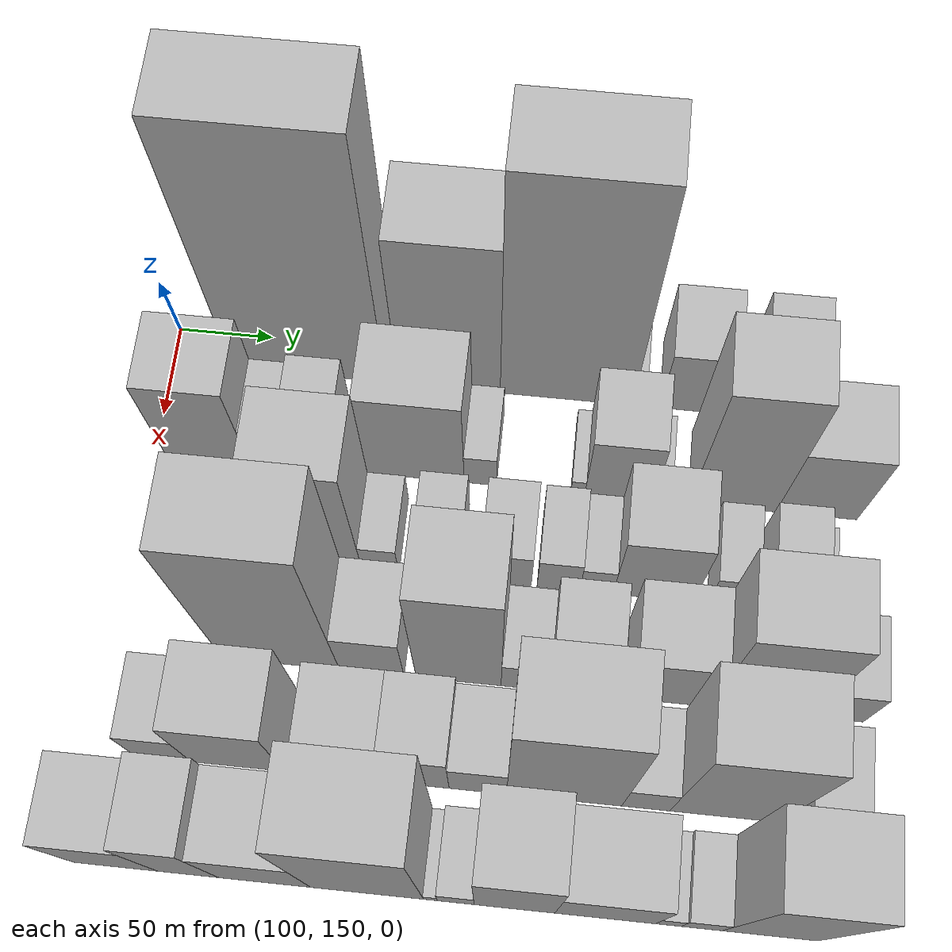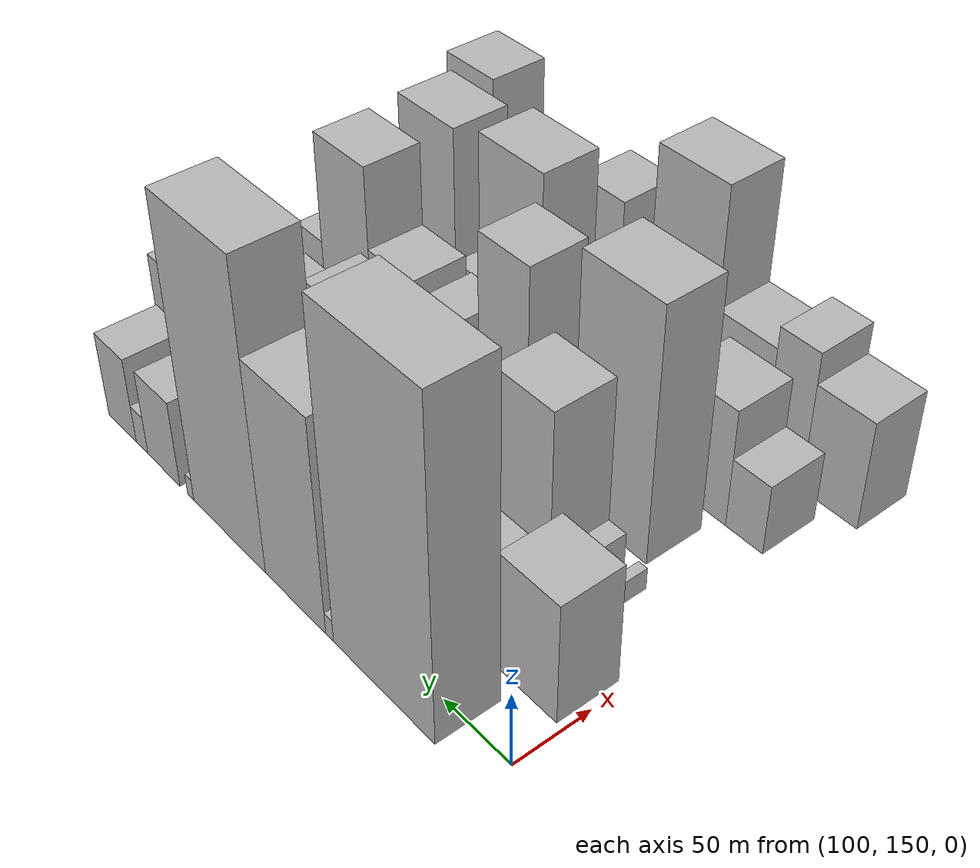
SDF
<sdf version="1.6">
 <world name="default">
  <model name="building_30">
   <static>1</static>
   <pose>100.0000 222.6896 0 0.000000 0.000000 0.000000</pose>
   <link name="link">
    <pose>0 0 109.50 0 0 0</pose>
    <collision name="collision"><geometry><box><size>40.0000 81.6465 219.0000</size></box></geometry></collision>
    <visual name="visual">
     <cast_shadows>0</cast_shadows>
     <geometry><box><size>40.0000 81.6465 219.0000</size></box></geometry>
     <material>
      <script>
       <uri>model://HANNAS_wall/materials/scripts</uri>
       <uri>model://HANNAS_wall/materials/textures</uri>
       <name>vrc/HANNAS_wall</name>
      </script>
     </material>
    </visual>
   </link>
  </model>
  <model name="building_31">
   <static>1</static>
   <pose>100.0000 266.8751 0 0.000000 0.000000 0.000000</pose>
   <link name="link">
    <pose>0 0 7.50 0 0 0</pose>
    <collision name="collision"><geometry><box><size>40.0000 6.7245 15.0000</size></box></geometry></collision>
    <visual name="visual">
     <cast_shadows>0</cast_shadows>
     <geometry><box><size>40.0000 6.7245 15.0000</size></box></geometry>
     <material>
      <script>
       <uri>model://HANNAS_wall/materials/scripts</uri>
       <uri>model://HANNAS_wall/materials/textures</uri>
       <name>vrc/HANNAS_wall</name>
      </script>
     </material>
    </visual>
   </link>
  </model>
  <model name="building_32">
   <static>1</static>
   <pose>100.0000 297.1430 0 0.000000 0.000000 0.000000</pose>
   <link name="link">
    <pose>0 0 72.00 0 0 0</pose>
    <collision name="collision"><geometry><box><size>40.0000 53.8115 144.0000</size></box></geometry></collision>
    <visual name="visual">
     <cast_shadows>0</cast_shadows>
     <geometry><box><size>40.0000 53.8115 144.0000</size></box></geometry>
     <material>
      <script>
       <uri>model://HANNAS_wall/materials/scripts</uri>
       <uri>model://HANNAS_wall/materials/textures</uri>
       <name>vrc/HANNAS_wall</name>
      </script>
     </material>
    </visual>
   </link>
  </model>
  <model name="building_33">
   <static>1</static>
   <pose>100.0000 358.9259 0 0.000000 0.000000 0.000000</pose>
   <link name="link">
    <pose>0 0 102.00 0 0 0</pose>
    <collision name="collision"><geometry><box><size>40.0000 69.7542 204.0000</size></box></geometry></collision>
    <visual name="visual">
     <cast_shadows>0</cast_shadows>
     <geometry><box><size>40.0000 69.7542 204.0000</size></box></geometry>
     <material>
      <script>
       <uri>model://HANNAS_wall/materials/scripts</uri>
       <uri>model://HANNAS_wall/materials/textures</uri>
       <name>vrc/HANNAS_wall</name>
      </script>
     </material>
    </visual>
   </link>
  </model>
  <model name="building_34">
   <static>1</static>
   <pose>100.0000 396.9656 0 0.000000 0.000000 0.000000</pose>
   <link name="link">
    <pose>0 0 7.50 0 0 0</pose>
    <collision name="collision"><geometry><box><size>40.0000 6.3254 15.0000</size></box></geometry></collision>
    <visual name="visual">
     <cast_shadows>0</cast_shadows>
     <geometry><box><size>40.0000 6.3254 15.0000</size></box></geometry>
     <material>
      <script>
       <uri>model://HANNAS_wall/materials/scripts</uri>
       <uri>model://HANNAS_wall/materials/textures</uri>
       <name>vrc/HANNAS_wall</name>
      </script>
     </material>
    </visual>
   </link>
  </model>
  <model name="building_35">
   <static>1</static>
   <pose>100.0000 425.0530 0 0.000000 0.000000 0.000000</pose>
   <link name="link">
    <pose>0 0 30.00 0 0 0</pose>
    <collision name="collision"><geometry><box><size>40.0000 33.8494 60.0000</size></box></geometry></collision>
    <visual name="visual">
     <cast_shadows>0</cast_shadows>
     <geometry><box><size>40.0000 33.8494 60.0000</size></box></geometry>
     <material>
      <script>
       <uri>model://HANNAS_wall/materials/scripts</uri>
       <uri>model://HANNAS_wall/materials/textures</uri>
       <name>vrc/HANNAS_wall</name>
      </script>
     </material>
    </visual>
   </link>
  </model>
  <model name="building_36">
   <static>1</static>
   <pose>100.0000 448.3234 0 0.000000 0.000000 0.000000</pose>
   <link name="link">
    <pose>0 0 13.50 0 0 0</pose>
    <collision name="collision"><geometry><box><size>40.0000 12.6913 27.0000</size></box></geometry></collision>
    <visual name="visual">
     <cast_shadows>0</cast_shadows>
     <geometry><box><size>40.0000 12.6913 27.0000</size></box></geometry>
     <material>
      <script>
       <uri>model://HANNAS_wall/materials/scripts</uri>
       <uri>model://HANNAS_wall/materials/textures</uri>
       <name>vrc/HANNAS_wall</name>
      </script>
     </material>
    </visual>
   </link>
  </model>
  <model name="building_37">
   <static>1</static>
   <pose>100.0000 469.9412 0 0.000000 0.000000 0.000000</pose>
   <link name="link">
    <pose>0 0 30.00 0 0 0</pose>
    <collision name="collision"><geometry><box><size>40.0000 30.5444 60.0000</size></box></geometry></collision>
    <visual name="visual">
     <cast_shadows>0</cast_shadows>
     <geometry><box><size>40.0000 30.5444 60.0000</size></box></geometry>
     <material>
      <script>
       <uri>model://HANNAS_wall/materials/scripts</uri>
       <uri>model://HANNAS_wall/materials/textures</uri>
       <name>vrc/HANNAS_wall</name>
      </script>
     </material>
    </visual>
   </link>
  </model>
  <model name="building_80">
   <static>1</static>
   <pose>152.0000 176.5757 0 0.000000 0.000000 0.000000</pose>
   <link name="link">
    <pose>0 0 40.50 0 0 0</pose>
    <collision name="collision"><geometry><box><size>40.0000 43.7370 81.0000</size></box></geometry></collision>
    <visual name="visual">
     <cast_shadows>0</cast_shadows>
     <geometry><box><size>40.0000 43.7370 81.0000</size></box></geometry>
     <material>
      <script>
       <uri>model://HANNAS_wall/materials/scripts</uri>
       <uri>model://HANNAS_wall/materials/textures</uri>
       <name>vrc/HANNAS_wall</name>
      </script>
     </material>
    </visual>
   </link>
  </model>
  <model name="building_81">
   <static>1</static>
   <pose>152.0000 208.3155 0 0.000000 0.000000 0.000000</pose>
   <link name="link">
    <pose>0 0 19.50 0 0 0</pose>
    <collision name="collision"><geometry><box><size>40.0000 19.7425 39.0000</size></box></geometry></collision>
    <visual name="visual">
     <cast_shadows>0</cast_shadows>
     <geometry><box><size>40.0000 19.7425 39.0000</size></box></geometry>
     <material>
      <script>
       <uri>model://HANNAS_wall/materials/scripts</uri>
       <uri>model://HANNAS_wall/materials/textures</uri>
       <name>vrc/HANNAS_wall</name>
      </script>
     </material>
    </visual>
   </link>
  </model>
  <model name="building_82">
   <static>1</static>
   <pose>152.0000 231.8939 0 0.000000 0.000000 0.000000</pose>
   <link name="link">
    <pose>0 0 24.00 0 0 0</pose>
    <collision name="collision"><geometry><box><size>40.0000 27.4143 48.0000</size></box></geometry></collision>
    <visual name="visual">
     <cast_shadows>0</cast_shadows>
     <geometry><box><size>40.0000 27.4143 48.0000</size></box></geometry>
     <material>
      <script>
       <uri>model://HANNAS_wall/materials/scripts</uri>
       <uri>model://HANNAS_wall/materials/textures</uri>
       <name>vrc/HANNAS_wall</name>
      </script>
     </material>
    </visual>
   </link>
  </model>
  <model name="building_83">
   <static>1</static>
   <pose>152.0000 254.9790 0 0.000000 0.000000 0.000000</pose>
   <link name="link">
    <pose>0 0 9.00 0 0 0</pose>
    <collision name="collision"><geometry><box><size>40.0000 8.7559 18.0000</size></box></geometry></collision>
    <visual name="visual">
     <cast_shadows>0</cast_shadows>
     <geometry><box><size>40.0000 8.7559 18.0000</size></box></geometry>
     <material>
      <script>
       <uri>model://HANNAS_wall/materials/scripts</uri>
       <uri>model://HANNAS_wall/materials/textures</uri>
       <name>vrc/HANNAS_wall</name>
      </script>
     </material>
    </visual>
   </link>
  </model>
  <model name="building_84">
   <static>1</static>
   <pose>152.0000 284.9435 0 0.000000 0.000000 0.000000</pose>
   <link name="link">
    <pose>0 0 45.00 0 0 0</pose>
    <collision name="collision"><geometry><box><size>40.0000 51.1730 90.0000</size></box></geometry></collision>
    <visual name="visual">
     <cast_shadows>0</cast_shadows>
     <geometry><box><size>40.0000 51.1730 90.0000</size></box></geometry>
     <material>
      <script>
       <uri>model://HANNAS_wall/materials/scripts</uri>
       <uri>model://HANNAS_wall/materials/textures</uri>
       <name>vrc/HANNAS_wall</name>
      </script>
     </material>
    </visual>
   </link>
  </model>
  <model name="building_85">
   <static>1</static>
   <pose>152.0000 318.8657 0 0.000000 0.000000 0.000000</pose>
   <link name="link">
    <pose>0 0 16.50 0 0 0</pose>
    <collision name="collision"><geometry><box><size>40.0000 16.6713 33.0000</size></box></geometry></collision>
    <visual name="visual">
     <cast_shadows>0</cast_shadows>
     <geometry><box><size>40.0000 16.6713 33.0000</size></box></geometry>
     <material>
      <script>
       <uri>model://HANNAS_wall/materials/scripts</uri>
       <uri>model://HANNAS_wall/materials/textures</uri>
       <name>vrc/HANNAS_wall</name>
      </script>
     </material>
    </visual>
   </link>
  </model>
  <model name="building_86">
   <static>1</static>
   <pose>152.0000 369.1546 0 0.000000 0.000000 0.000000</pose>
   <link name="link">
    <pose>0 0 7.50 0 0 0</pose>
    <collision name="collision"><geometry><box><size>40.0000 7.3022 15.0000</size></box></geometry></collision>
    <visual name="visual">
     <cast_shadows>0</cast_shadows>
     <geometry><box><size>40.0000 7.3022 15.0000</size></box></geometry>
     <material>
      <script>
       <uri>model://HANNAS_wall/materials/scripts</uri>
       <uri>model://HANNAS_wall/materials/textures</uri>
       <name>vrc/HANNAS_wall</name>
      </script>
     </material>
    </visual>
   </link>
  </model>
  <model name="building_87">
   <static>1</static>
   <pose>152.0000 390.4259 0 0.000000 0.000000 0.000000</pose>
   <link name="link">
    <pose>0 0 33.00 0 0 0</pose>
    <collision name="collision"><geometry><box><size>40.0000 35.2403 66.0000</size></box></geometry></collision>
    <visual name="visual">
     <cast_shadows>0</cast_shadows>
     <geometry><box><size>40.0000 35.2403 66.0000</size></box></geometry>
     <material>
      <script>
       <uri>model://HANNAS_wall/materials/scripts</uri>
       <uri>model://HANNAS_wall/materials/textures</uri>
       <name>vrc/HANNAS_wall</name>
      </script>
     </material>
    </visual>
   </link>
  </model>
  <model name="building_88">
   <static>1</static>
   <pose>152.0000 411.9635 0 0.000000 0.000000 0.000000</pose>
   <link name="link">
    <pose>0 0 9.00 0 0 0</pose>
    <collision name="collision"><geometry><box><size>40.0000 7.8349 18.0000</size></box></geometry></collision>
    <visual name="visual">
     <cast_shadows>0</cast_shadows>
     <geometry><box><size>40.0000 7.8349 18.0000</size></box></geometry>
     <material>
      <script>
       <uri>model://HANNAS_wall/materials/scripts</uri>
       <uri>model://HANNAS_wall/materials/textures</uri>
       <name>vrc/HANNAS_wall</name>
      </script>
     </material>
    </visual>
   </link>
  </model>
  <model name="building_89">
   <static>1</static>
   <pose>152.0000 448.1950 0 0.000000 0.000000 0.000000</pose>
   <link name="link">
    <pose>0 0 66.00 0 0 0</pose>
    <collision name="collision"><geometry><box><size>40.0000 44.6281 132.0000</size></box></geometry></collision>
    <visual name="visual">
     <cast_shadows>0</cast_shadows>
     <geometry><box><size>40.0000 44.6281 132.0000</size></box></geometry>
     <material>
      <script>
       <uri>model://HANNAS_wall/materials/scripts</uri>
       <uri>model://HANNAS_wall/materials/textures</uri>
       <name>vrc/HANNAS_wall</name>
      </script>
     </material>
    </visual>
   </link>
  </model>
  <model name="building_90">
   <static>1</static>
   <pose>152.0000 491.1642 0 0.000000 0.000000 0.000000</pose>
   <link name="link">
    <pose>0 0 37.50 0 0 0</pose>
    <collision name="collision"><geometry><box><size>40.0000 41.3102 75.0000</size></box></geometry></collision>
    <visual name="visual">
     <cast_shadows>0</cast_shadows>
     <geometry><box><size>40.0000 41.3102 75.0000</size></box></geometry>
     <material>
      <script>
       <uri>model://HANNAS_wall/materials/scripts</uri>
       <uri>model://HANNAS_wall/materials/textures</uri>
       <name>vrc/HANNAS_wall</name>
      </script>
     </material>
    </visual>
   </link>
  </model>
  <model name="building_133">
   <static>1</static>
   <pose>204.0000 193.1940 0 0.000000 0.000000 0.000000</pose>
   <link name="link">
    <pose>0 0 7.50 0 0 0</pose>
    <collision name="collision"><geometry><box><size>40.0000 6.5572 15.0000</size></box></geometry></collision>
    <visual name="visual">
     <cast_shadows>0</cast_shadows>
     <geometry><box><size>40.0000 6.5572 15.0000</size></box></geometry>
     <material>
      <script>
       <uri>model://HANNAS_wall/materials/scripts</uri>
       <uri>model://HANNAS_wall/materials/textures</uri>
       <name>vrc/HANNAS_wall</name>
      </script>
     </material>
    </visual>
   </link>
  </model>
  <model name="building_134">
   <static>1</static>
   <pose>204.0000 212.9743 0 0.000000 0.000000 0.000000</pose>
   <link name="link">
    <pose>0 0 13.50 0 0 0</pose>
    <collision name="collision"><geometry><box><size>40.0000 13.0035 27.0000</size></box></geometry></collision>
    <visual name="visual">
     <cast_shadows>0</cast_shadows>
     <geometry><box><size>40.0000 13.0035 27.0000</size></box></geometry>
     <material>
      <script>
       <uri>model://HANNAS_wall/materials/scripts</uri>
       <uri>model://HANNAS_wall/materials/textures</uri>
       <name>vrc/HANNAS_wall</name>
      </script>
     </material>
    </visual>
   </link>
  </model>
  <model name="building_135">
   <static>1</static>
   <pose>204.0000 241.9842 0 0.000000 0.000000 0.000000</pose>
   <link name="link">
    <pose>0 0 61.50 0 0 0</pose>
    <collision name="collision"><geometry><box><size>40.0000 45.0164 123.0000</size></box></geometry></collision>
    <visual name="visual">
     <cast_shadows>0</cast_shadows>
     <geometry><box><size>40.0000 45.0164 123.0000</size></box></geometry>
     <material>
      <script>
       <uri>model://HANNAS_wall/materials/scripts</uri>
       <uri>model://HANNAS_wall/materials/textures</uri>
       <name>vrc/HANNAS_wall</name>
      </script>
     </material>
    </visual>
   </link>
  </model>
  <model name="building_136">
   <static>1</static>
   <pose>204.0000 273.8310 0 0.000000 0.000000 0.000000</pose>
   <link name="link">
    <pose>0 0 16.50 0 0 0</pose>
    <collision name="collision"><geometry><box><size>40.0000 18.6770 33.0000</size></box></geometry></collision>
    <visual name="visual">
     <cast_shadows>0</cast_shadows>
     <geometry><box><size>40.0000 18.6770 33.0000</size></box></geometry>
     <material>
      <script>
       <uri>model://HANNAS_wall/materials/scripts</uri>
       <uri>model://HANNAS_wall/materials/textures</uri>
       <name>vrc/HANNAS_wall</name>
      </script>
     </material>
    </visual>
   </link>
  </model>
  <model name="building_137">
   <static>1</static>
   <pose>204.0000 302.8965 0 0.000000 0.000000 0.000000</pose>
   <link name="link">
    <pose>0 0 21.00 0 0 0</pose>
    <collision name="collision"><geometry><box><size>40.0000 23.4541 42.0000</size></box></geometry></collision>
    <visual name="visual">
     <cast_shadows>0</cast_shadows>
     <geometry><box><size>40.0000 23.4541 42.0000</size></box></geometry>
     <material>
      <script>
       <uri>model://HANNAS_wall/materials/scripts</uri>
       <uri>model://HANNAS_wall/materials/textures</uri>
       <name>vrc/HANNAS_wall</name>
      </script>
     </material>
    </visual>
   </link>
  </model>
  <model name="building_138">
   <static>1</static>
   <pose>204.0000 337.2116 0 0.000000 0.000000 0.000000</pose>
   <link name="link">
    <pose>0 0 21.00 0 0 0</pose>
    <collision name="collision"><geometry><box><size>40.0000 25.1760 42.0000</size></box></geometry></collision>
    <visual name="visual">
     <cast_shadows>0</cast_shadows>
     <geometry><box><size>40.0000 25.1760 42.0000</size></box></geometry>
     <material>
      <script>
       <uri>model://HANNAS_wall/materials/scripts</uri>
       <uri>model://HANNAS_wall/materials/textures</uri>
       <name>vrc/HANNAS_wall</name>
      </script>
     </material>
    </visual>
   </link>
  </model>
  <model name="building_139">
   <static>1</static>
   <pose>204.0000 363.4592 0 0.000000 0.000000 0.000000</pose>
   <link name="link">
    <pose>0 0 19.50 0 0 0</pose>
    <collision name="collision"><geometry><box><size>40.0000 21.3193 39.0000</size></box></geometry></collision>
    <visual name="visual">
     <cast_shadows>0</cast_shadows>
     <geometry><box><size>40.0000 21.3193 39.0000</size></box></geometry>
     <material>
      <script>
       <uri>model://HANNAS_wall/materials/scripts</uri>
       <uri>model://HANNAS_wall/materials/textures</uri>
       <name>vrc/HANNAS_wall</name>
      </script>
     </material>
    </visual>
   </link>
  </model>
  <model name="building_140">
   <static>1</static>
   <pose>204.0000 382.4380 0 0.000000 0.000000 0.000000</pose>
   <link name="link">
    <pose>0 0 16.50 0 0 0</pose>
    <collision name="collision"><geometry><box><size>40.0000 16.6383 33.0000</size></box></geometry></collision>
    <visual name="visual">
     <cast_shadows>0</cast_shadows>
     <geometry><box><size>40.0000 16.6383 33.0000</size></box></geometry>
     <material>
      <script>
       <uri>model://HANNAS_wall/materials/scripts</uri>
       <uri>model://HANNAS_wall/materials/textures</uri>
       <name>vrc/HANNAS_wall</name>
      </script>
     </material>
    </visual>
   </link>
  </model>
  <model name="building_141">
   <static>1</static>
   <pose>204.0000 410.9063 0 0.000000 0.000000 0.000000</pose>
   <link name="link">
    <pose>0 0 39.00 0 0 0</pose>
    <collision name="collision"><geometry><box><size>40.0000 40.2984 78.0000</size></box></geometry></collision>
    <visual name="visual">
     <cast_shadows>0</cast_shadows>
     <geometry><box><size>40.0000 40.2984 78.0000</size></box></geometry>
     <material>
      <script>
       <uri>model://HANNAS_wall/materials/scripts</uri>
       <uri>model://HANNAS_wall/materials/textures</uri>
       <name>vrc/HANNAS_wall</name>
      </script>
     </material>
    </visual>
   </link>
  </model>
  <model name="building_142">
   <static>1</static>
   <pose>204.0000 448.0942 0 0.000000 0.000000 0.000000</pose>
   <link name="link">
    <pose>0 0 19.50 0 0 0</pose>
    <collision name="collision"><geometry><box><size>40.0000 20.0774 39.0000</size></box></geometry></collision>
    <visual name="visual">
     <cast_shadows>0</cast_shadows>
     <geometry><box><size>40.0000 20.0774 39.0000</size></box></geometry>
     <material>
      <script>
       <uri>model://HANNAS_wall/materials/scripts</uri>
       <uri>model://HANNAS_wall/materials/textures</uri>
       <name>vrc/HANNAS_wall</name>
      </script>
     </material>
    </visual>
   </link>
  </model>
  <model name="building_143">
   <static>1</static>
   <pose>204.0000 477.1650 0 0.000000 0.000000 0.000000</pose>
   <link name="link">
    <pose>0 0 22.50 0 0 0</pose>
    <collision name="collision"><geometry><box><size>40.0000 26.0640 45.0000</size></box></geometry></collision>
    <visual name="visual">
     <cast_shadows>0</cast_shadows>
     <geometry><box><size>40.0000 26.0640 45.0000</size></box></geometry>
     <material>
      <script>
       <uri>model://HANNAS_wall/materials/scripts</uri>
       <uri>model://HANNAS_wall/materials/textures</uri>
       <name>vrc/HANNAS_wall</name>
      </script>
     </material>
    </visual>
   </link>
  </model>
  <model name="building_144">
   <static>1</static>
   <pose>204.0000 494.5583 0 0.000000 0.000000 0.000000</pose>
   <link name="link">
    <pose>0 0 9.00 0 0 0</pose>
    <collision name="collision"><geometry><box><size>40.0000 8.7225 18.0000</size></box></geometry></collision>
    <visual name="visual">
     <cast_shadows>0</cast_shadows>
     <geometry><box><size>40.0000 8.7225 18.0000</size></box></geometry>
     <material>
      <script>
       <uri>model://HANNAS_wall/materials/scripts</uri>
       <uri>model://HANNAS_wall/materials/textures</uri>
       <name>vrc/HANNAS_wall</name>
      </script>
     </material>
    </visual>
   </link>
  </model>
  <model name="building_183">
   <static>1</static>
   <pose>256.0000 231.2332 0 0.000000 0.000000 0.000000</pose>
   <link name="link">
    <pose>0 0 85.50 0 0 0</pose>
    <collision name="collision"><geometry><box><size>40.0000 57.9868 171.0000</size></box></geometry></collision>
    <visual name="visual">
     <cast_shadows>0</cast_shadows>
     <geometry><box><size>40.0000 57.9868 171.0000</size></box></geometry>
     <material>
      <script>
       <uri>model://HANNAS_wall/materials/scripts</uri>
       <uri>model://HANNAS_wall/materials/textures</uri>
       <name>vrc/HANNAS_wall</name>
      </script>
     </material>
    </visual>
   </link>
  </model>
  <model name="building_184">
   <static>1</static>
   <pose>256.0000 276.1626 0 0.000000 0.000000 0.000000</pose>
   <link name="link">
    <pose>0 0 28.50 0 0 0</pose>
    <collision name="collision"><geometry><box><size>40.0000 31.8721 57.0000</size></box></geometry></collision>
    <visual name="visual">
     <cast_shadows>0</cast_shadows>
     <geometry><box><size>40.0000 31.8721 57.0000</size></box></geometry>
     <material>
      <script>
       <uri>model://HANNAS_wall/materials/scripts</uri>
       <uri>model://HANNAS_wall/materials/textures</uri>
       <name>vrc/HANNAS_wall</name>
      </script>
     </material>
    </visual>
   </link>
  </model>
  <model name="building_185">
   <static>1</static>
   <pose>256.0000 318.9410 0 0.000000 0.000000 0.000000</pose>
   <link name="link">
    <pose>0 0 69.00 0 0 0</pose>
    <collision name="collision"><geometry><box><size>40.0000 41.6847 138.0000</size></box></geometry></collision>
    <visual name="visual">
     <cast_shadows>0</cast_shadows>
     <geometry><box><size>40.0000 41.6847 138.0000</size></box></geometry>
     <material>
      <script>
       <uri>model://HANNAS_wall/materials/scripts</uri>
       <uri>model://HANNAS_wall/materials/textures</uri>
       <name>vrc/HANNAS_wall</name>
      </script>
     </material>
    </visual>
   </link>
  </model>
  <model name="building_186">
   <static>1</static>
   <pose>256.0000 351.3844 0 0.000000 0.000000 0.000000</pose>
   <link name="link">
    <pose>0 0 19.50 0 0 0</pose>
    <collision name="collision"><geometry><box><size>40.0000 23.2022 39.0000</size></box></geometry></collision>
    <visual name="visual">
     <cast_shadows>0</cast_shadows>
     <geometry><box><size>40.0000 23.2022 39.0000</size></box></geometry>
     <material>
      <script>
       <uri>model://HANNAS_wall/materials/scripts</uri>
       <uri>model://HANNAS_wall/materials/textures</uri>
       <name>vrc/HANNAS_wall</name>
      </script>
     </material>
    </visual>
   </link>
  </model>
  <model name="building_187">
   <static>1</static>
   <pose>256.0000 379.0873 0 0.000000 0.000000 0.000000</pose>
   <link name="link">
    <pose>0 0 30.00 0 0 0</pose>
    <collision name="collision"><geometry><box><size>40.0000 32.2036 60.0000</size></box></geometry></collision>
    <visual name="visual">
     <cast_shadows>0</cast_shadows>
     <geometry><box><size>40.0000 32.2036 60.0000</size></box></geometry>
     <material>
      <script>
       <uri>model://HANNAS_wall/materials/scripts</uri>
       <uri>model://HANNAS_wall/materials/textures</uri>
       <name>vrc/HANNAS_wall</name>
      </script>
     </material>
    </visual>
   </link>
  </model>
  <model name="building_188">
   <static>1</static>
   <pose>256.0000 420.5503 0 0.000000 0.000000 0.000000</pose>
   <link name="link">
    <pose>0 0 34.50 0 0 0</pose>
    <collision name="collision"><geometry><box><size>40.0000 40.7224 69.0000</size></box></geometry></collision>
    <visual name="visual">
     <cast_shadows>0</cast_shadows>
     <geometry><box><size>40.0000 40.7224 69.0000</size></box></geometry>
     <material>
      <script>
       <uri>model://HANNAS_wall/materials/scripts</uri>
       <uri>model://HANNAS_wall/materials/textures</uri>
       <name>vrc/HANNAS_wall</name>
      </script>
     </material>
    </visual>
   </link>
  </model>
  <model name="building_189">
   <static>1</static>
   <pose>256.0000 465.3791 0 0.000000 0.000000 0.000000</pose>
   <link name="link">
    <pose>0 0 63.00 0 0 0</pose>
    <collision name="collision"><geometry><box><size>40.0000 48.9353 126.0000</size></box></geometry></collision>
    <visual name="visual">
     <cast_shadows>0</cast_shadows>
     <geometry><box><size>40.0000 48.9353 126.0000</size></box></geometry>
     <material>
      <script>
       <uri>model://HANNAS_wall/materials/scripts</uri>
       <uri>model://HANNAS_wall/materials/textures</uri>
       <name>vrc/HANNAS_wall</name>
      </script>
     </material>
    </visual>
   </link>
  </model>
  <model name="building_190">
   <static>1</static>
   <pose>256.0000 503.0374 0 0.000000 0.000000 0.000000</pose>
   <link name="link">
    <pose>0 0 24.00 0 0 0</pose>
    <collision name="collision"><geometry><box><size>40.0000 26.3812 48.0000</size></box></geometry></collision>
    <visual name="visual">
     <cast_shadows>0</cast_shadows>
     <geometry><box><size>40.0000 26.3812 48.0000</size></box></geometry>
     <material>
      <script>
       <uri>model://HANNAS_wall/materials/scripts</uri>
       <uri>model://HANNAS_wall/materials/textures</uri>
       <name>vrc/HANNAS_wall</name>
      </script>
     </material>
    </visual>
   </link>
  </model>
  <model name="building_232">
   <static>1</static>
   <pose>308.0000 182.0871 0 0.000000 0.000000 0.000000</pose>
   <link name="link">
    <pose>0 0 24.00 0 0 0</pose>
    <collision name="collision"><geometry><box><size>40.0000 27.0562 48.0000</size></box></geometry></collision>
    <visual name="visual">
     <cast_shadows>0</cast_shadows>
     <geometry><box><size>40.0000 27.0562 48.0000</size></box></geometry>
     <material>
      <script>
       <uri>model://HANNAS_wall/materials/scripts</uri>
       <uri>model://HANNAS_wall/materials/textures</uri>
       <name>vrc/HANNAS_wall</name>
      </script>
     </material>
    </visual>
   </link>
  </model>
  <model name="building_233">
   <static>1</static>
   <pose>308.0000 218.2150 0 0.000000 0.000000 0.000000</pose>
   <link name="link">
    <pose>0 0 40.50 0 0 0</pose>
    <collision name="collision"><geometry><box><size>40.0000 45.1996 81.0000</size></box></geometry></collision>
    <visual name="visual">
     <cast_shadows>0</cast_shadows>
     <geometry><box><size>40.0000 45.1996 81.0000</size></box></geometry>
     <material>
      <script>
       <uri>model://HANNAS_wall/materials/scripts</uri>
       <uri>model://HANNAS_wall/materials/textures</uri>
       <name>vrc/HANNAS_wall</name>
      </script>
     </material>
    </visual>
   </link>
  </model>
  <model name="building_234">
   <static>1</static>
   <pose>308.0000 269.5792 0 0.000000 0.000000 0.000000</pose>
   <link name="link">
    <pose>0 0 31.50 0 0 0</pose>
    <collision name="collision"><geometry><box><size>40.0000 37.5288 63.0000</size></box></geometry></collision>
    <visual name="visual">
     <cast_shadows>0</cast_shadows>
     <geometry><box><size>40.0000 37.5288 63.0000</size></box></geometry>
     <material>
      <script>
       <uri>model://HANNAS_wall/materials/scripts</uri>
       <uri>model://HANNAS_wall/materials/textures</uri>
       <name>vrc/HANNAS_wall</name>
      </script>
     </material>
    </visual>
   </link>
  </model>
  <model name="building_235">
   <static>1</static>
   <pose>308.0000 304.2215 0 0.000000 0.000000 0.000000</pose>
   <link name="link">
    <pose>0 0 31.50 0 0 0</pose>
    <collision name="collision"><geometry><box><size>40.0000 31.7558 63.0000</size></box></geometry></collision>
    <visual name="visual">
     <cast_shadows>0</cast_shadows>
     <geometry><box><size>40.0000 31.7558 63.0000</size></box></geometry>
     <material>
      <script>
       <uri>model://HANNAS_wall/materials/scripts</uri>
       <uri>model://HANNAS_wall/materials/textures</uri>
       <name>vrc/HANNAS_wall</name>
      </script>
     </material>
    </visual>
   </link>
  </model>
  <model name="building_236">
   <static>1</static>
   <pose>308.0000 333.7915 0 0.000000 0.000000 0.000000</pose>
   <link name="link">
    <pose>0 0 25.50 0 0 0</pose>
    <collision name="collision"><geometry><box><size>40.0000 27.3842 51.0000</size></box></geometry></collision>
    <visual name="visual">
     <cast_shadows>0</cast_shadows>
     <geometry><box><size>40.0000 27.3842 51.0000</size></box></geometry>
     <material>
      <script>
       <uri>model://HANNAS_wall/materials/scripts</uri>
       <uri>model://HANNAS_wall/materials/textures</uri>
       <name>vrc/HANNAS_wall</name>
      </script>
     </material>
    </visual>
   </link>
  </model>
  <model name="building_237">
   <static>1</static>
   <pose>308.0000 374.9916 0 0.000000 0.000000 0.000000</pose>
   <link name="link">
    <pose>0 0 73.50 0 0 0</pose>
    <collision name="collision"><geometry><box><size>40.0000 55.0162 147.0000</size></box></geometry></collision>
    <visual name="visual">
     <cast_shadows>0</cast_shadows>
     <geometry><box><size>40.0000 55.0162 147.0000</size></box></geometry>
     <material>
      <script>
       <uri>model://HANNAS_wall/materials/scripts</uri>
       <uri>model://HANNAS_wall/materials/textures</uri>
       <name>vrc/HANNAS_wall</name>
      </script>
     </material>
    </visual>
   </link>
  </model>
  <model name="building_238">
   <static>1</static>
   <pose>308.0000 413.8195 0 0.000000 0.000000 0.000000</pose>
   <link name="link">
    <pose>0 0 22.50 0 0 0</pose>
    <collision name="collision"><geometry><box><size>40.0000 22.6395 45.0000</size></box></geometry></collision>
    <visual name="visual">
     <cast_shadows>0</cast_shadows>
     <geometry><box><size>40.0000 22.6395 45.0000</size></box></geometry>
     <material>
      <script>
       <uri>model://HANNAS_wall/materials/scripts</uri>
       <uri>model://HANNAS_wall/materials/textures</uri>
       <name>vrc/HANNAS_wall</name>
      </script>
     </material>
    </visual>
   </link>
  </model>
  <model name="building_239">
   <static>1</static>
   <pose>308.0000 451.0164 0 0.000000 0.000000 0.000000</pose>
   <link name="link">
    <pose>0 0 69.00 0 0 0</pose>
    <collision name="collision"><geometry><box><size>40.0000 51.7543 138.0000</size></box></geometry></collision>
    <visual name="visual">
     <cast_shadows>0</cast_shadows>
     <geometry><box><size>40.0000 51.7543 138.0000</size></box></geometry>
     <material>
      <script>
       <uri>model://HANNAS_wall/materials/scripts</uri>
       <uri>model://HANNAS_wall/materials/textures</uri>
       <name>vrc/HANNAS_wall</name>
      </script>
     </material>
    </visual>
   </link>
  </model>
  <model name="building_240">
   <static>1</static>
   <pose>308.0000 480.2893 0 0.000000 0.000000 0.000000</pose>
   <link name="link">
    <pose>0 0 7.50 0 0 0</pose>
    <collision name="collision"><geometry><box><size>40.0000 6.7915 15.0000</size></box></geometry></collision>
    <visual name="visual">
     <cast_shadows>0</cast_shadows>
     <geometry><box><size>40.0000 6.7915 15.0000</size></box></geometry>
     <material>
      <script>
       <uri>model://HANNAS_wall/materials/scripts</uri>
       <uri>model://HANNAS_wall/materials/textures</uri>
       <name>vrc/HANNAS_wall</name>
      </script>
     </material>
    </visual>
   </link>
  </model>
  <model name="building_241">
   <static>1</static>
   <pose>308.0000 496.8267 0 0.000000 0.000000 0.000000</pose>
   <link name="link">
    <pose>0 0 22.50 0 0 0</pose>
    <collision name="collision"><geometry><box><size>40.0000 26.2833 45.0000</size></box></geometry></collision>
    <visual name="visual">
     <cast_shadows>0</cast_shadows>
     <geometry><box><size>40.0000 26.2833 45.0000</size></box></geometry>
     <material>
      <script>
       <uri>model://HANNAS_wall/materials/scripts</uri>
       <uri>model://HANNAS_wall/materials/textures</uri>
       <name>vrc/HANNAS_wall</name>
      </script>
     </material>
    </visual>
   </link>
  </model>
  <model name="building_277">
   <static>1</static>
   <pose>360.0000 168.8661 0 0.000000 0.000000 0.000000</pose>
   <link name="link">
    <pose>0 0 37.50 0 0 0</pose>
    <collision name="collision"><geometry><box><size>40.0000 39.7621 75.0000</size></box></geometry></collision>
    <visual name="visual">
     <cast_shadows>0</cast_shadows>
     <geometry><box><size>40.0000 39.7621 75.0000</size></box></geometry>
     <material>
      <script>
       <uri>model://HANNAS_wall/materials/scripts</uri>
       <uri>model://HANNAS_wall/materials/textures</uri>
       <name>vrc/HANNAS_wall</name>
      </script>
     </material>
    </visual>
   </link>
  </model>
  <model name="building_278">
   <static>1</static>
   <pose>360.0000 203.1619 0 0.000000 0.000000 0.000000</pose>
   <link name="link">
    <pose>0 0 48.00 0 0 0</pose>
    <collision name="collision"><geometry><box><size>40.0000 28.8294 96.0000</size></box></geometry></collision>
    <visual name="visual">
     <cast_shadows>0</cast_shadows>
     <geometry><box><size>40.0000 28.8294 96.0000</size></box></geometry>
     <material>
      <script>
       <uri>model://HANNAS_wall/materials/scripts</uri>
       <uri>model://HANNAS_wall/materials/textures</uri>
       <name>vrc/HANNAS_wall</name>
      </script>
     </material>
    </visual>
   </link>
  </model>
  <model name="building_279">
   <static>1</static>
   <pose>360.0000 239.2937 0 0.000000 0.000000 0.000000</pose>
   <link name="link">
    <pose>0 0 40.50 0 0 0</pose>
    <collision name="collision"><geometry><box><size>40.0000 43.4341 81.0000</size></box></geometry></collision>
    <visual name="visual">
     <cast_shadows>0</cast_shadows>
     <geometry><box><size>40.0000 43.4341 81.0000</size></box></geometry>
     <material>
      <script>
       <uri>model://HANNAS_wall/materials/scripts</uri>
       <uri>model://HANNAS_wall/materials/textures</uri>
       <name>vrc/HANNAS_wall</name>
      </script>
     </material>
    </visual>
   </link>
  </model>
  <model name="building_280">
   <static>1</static>
   <pose>360.0000 287.4844 0 0.000000 0.000000 0.000000</pose>
   <link name="link">
    <pose>0 0 81.00 0 0 0</pose>
    <collision name="collision"><geometry><box><size>40.0000 52.9474 162.0000</size></box></geometry></collision>
    <visual name="visual">
     <cast_shadows>0</cast_shadows>
     <geometry><box><size>40.0000 52.9474 162.0000</size></box></geometry>
     <material>
      <script>
       <uri>model://HANNAS_wall/materials/scripts</uri>
       <uri>model://HANNAS_wall/materials/textures</uri>
       <name>vrc/HANNAS_wall</name>
      </script>
     </material>
    </visual>
   </link>
  </model>
  <model name="building_281">
   <static>1</static>
   <pose>360.0000 317.1855 0 0.000000 0.000000 0.000000</pose>
   <link name="link">
    <pose>0 0 7.50 0 0 0</pose>
    <collision name="collision"><geometry><box><size>40.0000 6.4547 15.0000</size></box></geometry></collision>
    <visual name="visual">
     <cast_shadows>0</cast_shadows>
     <geometry><box><size>40.0000 6.4547 15.0000</size></box></geometry>
     <material>
      <script>
       <uri>model://HANNAS_wall/materials/scripts</uri>
       <uri>model://HANNAS_wall/materials/textures</uri>
       <name>vrc/HANNAS_wall</name>
      </script>
     </material>
    </visual>
   </link>
  </model>
  <model name="building_282">
   <static>1</static>
   <pose>360.0000 328.9522 0 0.000000 0.000000 0.000000</pose>
   <link name="link">
    <pose>0 0 15.00 0 0 0</pose>
    <collision name="collision"><geometry><box><size>40.0000 17.0787 30.0000</size></box></geometry></collision>
    <visual name="visual">
     <cast_shadows>0</cast_shadows>
     <geometry><box><size>40.0000 17.0787 30.0000</size></box></geometry>
     <material>
      <script>
       <uri>model://HANNAS_wall/materials/scripts</uri>
       <uri>model://HANNAS_wall/materials/textures</uri>
       <name>vrc/HANNAS_wall</name>
      </script>
     </material>
    </visual>
   </link>
  </model>
  <model name="building_283">
   <static>1</static>
   <pose>360.0000 356.2900 0 0.000000 0.000000 0.000000</pose>
   <link name="link">
    <pose>0 0 55.50 0 0 0</pose>
    <collision name="collision"><geometry><box><size>40.0000 37.5970 111.0000</size></box></geometry></collision>
    <visual name="visual">
     <cast_shadows>0</cast_shadows>
     <geometry><box><size>40.0000 37.5970 111.0000</size></box></geometry>
     <material>
      <script>
       <uri>model://HANNAS_wall/materials/scripts</uri>
       <uri>model://HANNAS_wall/materials/textures</uri>
       <name>vrc/HANNAS_wall</name>
      </script>
     </material>
    </visual>
   </link>
  </model>
  <model name="building_284">
   <static>1</static>
   <pose>360.0000 398.4023 0 0.000000 0.000000 0.000000</pose>
   <link name="link">
    <pose>0 0 39.00 0 0 0</pose>
    <collision name="collision"><geometry><box><size>40.0000 46.6276 78.0000</size></box></geometry></collision>
    <visual name="visual">
     <cast_shadows>0</cast_shadows>
     <geometry><box><size>40.0000 46.6276 78.0000</size></box></geometry>
     <material>
      <script>
       <uri>model://HANNAS_wall/materials/scripts</uri>
       <uri>model://HANNAS_wall/materials/textures</uri>
       <name>vrc/HANNAS_wall</name>
      </script>
     </material>
    </visual>
   </link>
  </model>
  <model name="building_285">
   <static>1</static>
   <pose>360.0000 427.5129 0 0.000000 0.000000 0.000000</pose>
   <link name="link">
    <pose>0 0 13.50 0 0 0</pose>
    <collision name="collision"><geometry><box><size>40.0000 11.5937 27.0000</size></box></geometry></collision>
    <visual name="visual">
     <cast_shadows>0</cast_shadows>
     <geometry><box><size>40.0000 11.5937 27.0000</size></box></geometry>
     <material>
      <script>
       <uri>model://HANNAS_wall/materials/scripts</uri>
       <uri>model://HANNAS_wall/materials/textures</uri>
       <name>vrc/HANNAS_wall</name>
      </script>
     </material>
    </visual>
   </link>
  </model>
  <model name="building_286">
   <static>1</static>
   <pose>360.0000 442.8447 0 0.000000 0.000000 0.000000</pose>
   <link name="link">
    <pose>0 0 16.50 0 0 0</pose>
    <collision name="collision"><geometry><box><size>40.0000 19.0699 33.0000</size></box></geometry></collision>
    <visual name="visual">
     <cast_shadows>0</cast_shadows>
     <geometry><box><size>40.0000 19.0699 33.0000</size></box></geometry>
     <material>
      <script>
       <uri>model://HANNAS_wall/materials/scripts</uri>
       <uri>model://HANNAS_wall/materials/textures</uri>
       <name>vrc/HANNAS_wall</name>
      </script>
     </material>
    </visual>
   </link>
  </model>
  <model name="building_287">
   <static>1</static>
   <pose>360.0000 474.3857 0 0.000000 0.000000 0.000000</pose>
   <link name="link">
    <pose>0 0 69.00 0 0 0</pose>
    <collision name="collision"><geometry><box><size>40.0000 44.0121 138.0000</size></box></geometry></collision>
    <visual name="visual">
     <cast_shadows>0</cast_shadows>
     <geometry><box><size>40.0000 44.0121 138.0000</size></box></geometry>
     <material>
      <script>
       <uri>model://HANNAS_wall/materials/scripts</uri>
       <uri>model://HANNAS_wall/materials/textures</uri>
       <name>vrc/HANNAS_wall</name>
      </script>
     </material>
    </visual>
   </link>
  </model>
 </world>
</sdf>
